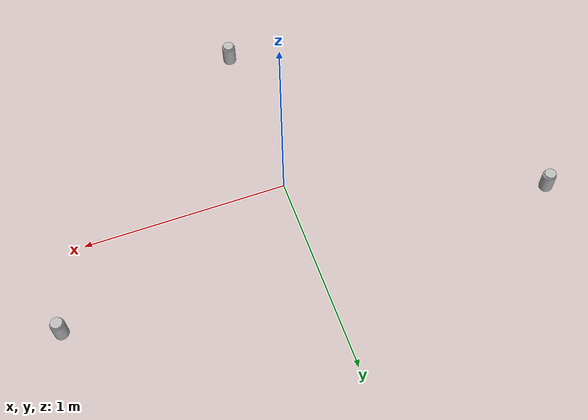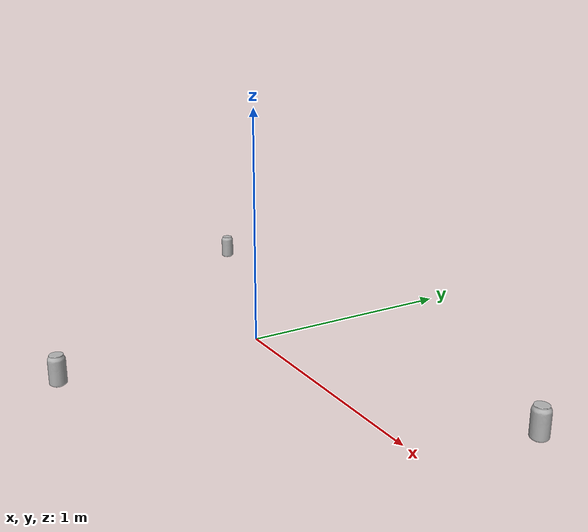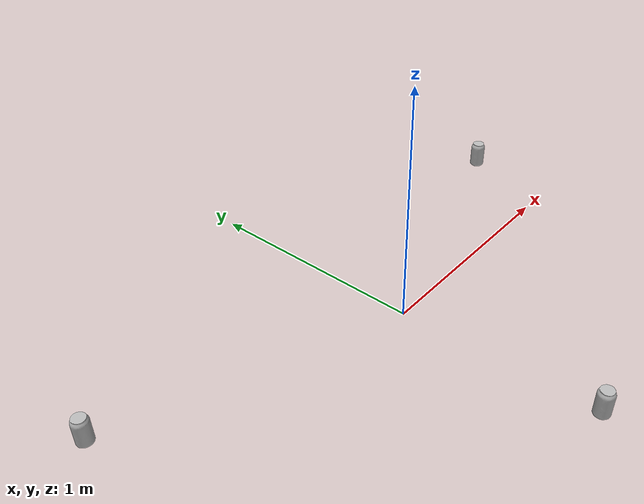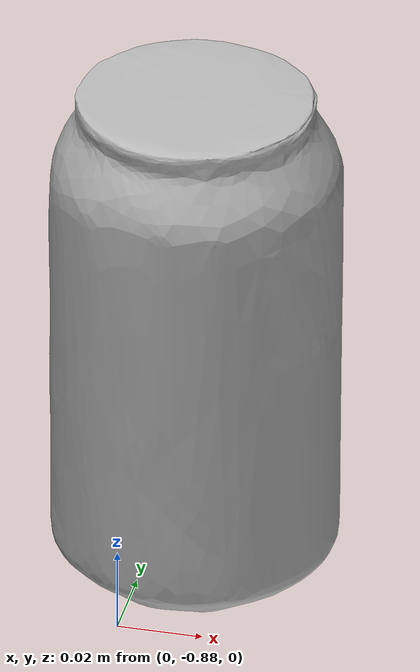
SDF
<?xml version='1.0'?>
<sdf version='1.7'>
  <model name='cans_test'>
    <model name='coke_can'>
      <link name='link'>
        <inertial>
          <pose>0 0 0.06 0 -0 0</pose>
          <mass>0.39</mass>
          <inertia>
            <ixx>0.00055575</ixx>
            <ixy>0</ixy>
            <ixz>0</ixz>
            <iyy>0.00055575</iyy>
            <iyz>0</iyz>
            <izz>0.0001755</izz>
          </inertia>
        </inertial>
        <collision name='collision'>
          <pose>0.003937 0.004724 -0.18 0 -0 0</pose>
          <geometry>
            <mesh>
              <uri>model://coke_can/meshes/coke_can.dae</uri>
            </mesh>
          </geometry>
          <surface>
            <friction>
              <ode>
                <mu>1</mu>
                <mu2>1</mu2>
              </ode>
            </friction>
            <contact>
              <ode>
                <kp>1e+07</kp>
                <kd>1</kd>
                <min_depth>0.001</min_depth>
                <max_vel>0.1</max_vel>
              </ode>
            </contact>
          </surface>
        </collision>
        <visual name='visual'>
          <pose>0.003937 0.004724 -0.18 0 -0 0</pose>
          <geometry>
            <mesh>
              <uri>model://coke_can/meshes/coke_can.dae</uri>
            </mesh>
          </geometry>
        </visual>
      </link>
      <pose>0.012815 -0.851015 -2.7e-05 0 -0 0</pose>
    </model>
    <model name='coke_can_0'>
      <link name='link'>
        <inertial>
          <pose>0 0 0.06 0 -0 0</pose>
          <mass>0.39</mass>
          <inertia>
            <ixx>0.00055575</ixx>
            <ixy>0</ixy>
            <ixz>0</ixz>
            <iyy>0.00055575</iyy>
            <iyz>0</iyz>
            <izz>0.0001755</izz>
          </inertia>
        </inertial>
        <collision name='collision'>
          <pose>0.003937 0.004724 -0.18 0 -0 0</pose>
          <geometry>
            <mesh>
              <uri>model://coke_can/meshes/coke_can.dae</uri>
            </mesh>
          </geometry>
          <surface>
            <friction>
              <ode>
                <mu>1</mu>
                <mu2>1</mu2>
              </ode>
            </friction>
            <contact>
              <ode>
                <kp>1e+07</kp>
                <kd>1</kd>
                <min_depth>0.001</min_depth>
                <max_vel>0.1</max_vel>
              </ode>
            </contact>
          </surface>
        </collision>
        <visual name='visual'>
          <pose>0.003937 0.004724 -0.18 0 -0 0</pose>
          <geometry>
            <mesh>
              <uri>model://coke_can/meshes/coke_can.dae</uri>
            </mesh>
          </geometry>
        </visual>
      </link>
      <pose>-1.2063 0.446066 0.00019 0 -0 0</pose>
    </model>
    <model name='coke_can_1'>
      <link name='link'>
        <inertial>
          <pose>0 0 0.06 0 -0 0</pose>
          <mass>0.39</mass>
          <inertia>
            <ixx>0.00055575</ixx>
            <ixy>0</ixy>
            <ixz>0</ixz>
            <iyy>0.00055575</iyy>
            <iyz>0</iyz>
            <izz>0.0001755</izz>
          </inertia>
        </inertial>
        <collision name='collision'>
          <pose>0.003937 0.004724 -0.18 0 -0 0</pose>
          <geometry>
            <mesh>
              <uri>model://coke_can/meshes/coke_can.dae</uri>
            </mesh>
          </geometry>
          <surface>
            <friction>
              <ode>
                <mu>1</mu>
                <mu2>1</mu2>
              </ode>
            </friction>
            <contact>
              <ode>
                <kp>1e+07</kp>
                <kd>1</kd>
                <min_depth>0.001</min_depth>
                <max_vel>0.1</max_vel>
              </ode>
            </contact>
          </surface>
        </collision>
        <visual name='visual'>
          <pose>0.003937 0.004724 -0.18 0 -0 0</pose>
          <geometry>
            <mesh>
              <uri>model://coke_can/meshes/coke_can.dae</uri>
            </mesh>
          </geometry>
        </visual>
      </link>
      <pose>1.19349 0.404952 -0.000158 0 -0 0</pose>
    </model>
    <static>0</static>
    <allow_auto_disable>1</allow_auto_disable>
  </model>
</sdf>
